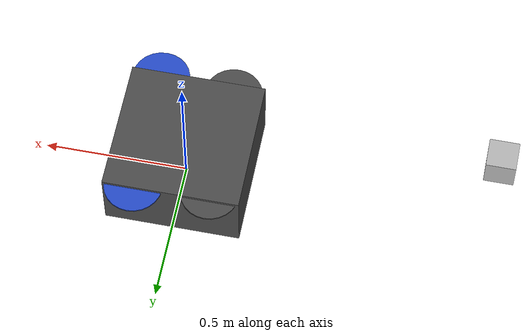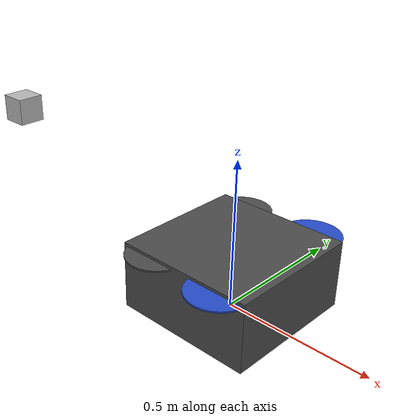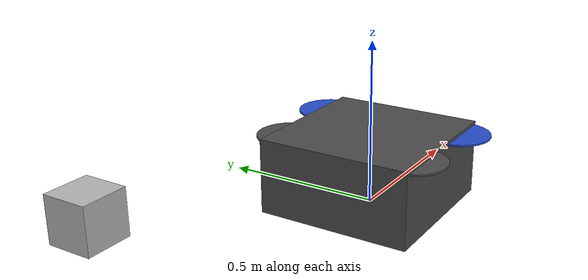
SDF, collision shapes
<?xml version='1.0'?>
<sdf version="1.6">
  <model name="iris_demo">
    <include>
      <uri>model://iris_with_standoffs</uri>
    </include>

    <include>
      <uri>panoramic_camera</uri>
    </include>

    <!-- plugins -->
    <plugin name="rotor_0_blade_1" filename="libLiftDragPlugin.so">
      <a0>0.1</a0>
      <alpha_stall>1.4</alpha_stall>
      <cla>0.2500</cla>
      <cda>0.10</cda>
      <cma>0.00</cma>
      <cla_stall>-0.025</cla_stall>
      <cda_stall>0.0</cda_stall>
      <cma_stall>0.0</cma_stall>
      <area>0.2</area>
      <air_density>1.2041</air_density>
      <cp>0.084 0 0</cp>
      <forward>0 1 0</forward>
      <upward>0 0 1</upward>
      <link_name>iris::rotor_0</link_name>
    </plugin>
    <plugin name="rotor_0_blade_2" filename="libLiftDragPlugin.so">
      <a0>0.1</a0>
      <alpha_stall>1.4</alpha_stall>
      <cla>0.2500</cla>
      <cda>0.10</cda>
      <cma>0.00</cma>
      <cla_stall>-0.025</cla_stall>
      <cda_stall>0.0</cda_stall>
      <cma_stall>0.0</cma_stall>
      <area>0.2</area>
      <air_density>1.2041</air_density>
      <cp>-0.084 0 0</cp>
      <forward>0 -1 0</forward>
      <upward>0 0 1</upward>
      <link_name>iris::rotor_0</link_name>
    </plugin>

    <plugin name="rotor_1_blade_1" filename="libLiftDragPlugin.so">
      <a0>0.1</a0>
      <alpha_stall>1.4</alpha_stall>
      <cla>0.2500</cla>
      <cda>0.10</cda>
      <cma>0.00</cma>
      <cla_stall>-0.025</cla_stall>
      <cda_stall>0.0</cda_stall>
      <cma_stall>0.0</cma_stall>
      <area>0.2</area>
      <air_density>1.2041</air_density>
      <cp>0.084 0 0</cp>
      <forward>0 1 0</forward>
      <upward>0 0 1</upward>
      <link_name>iris::rotor_1</link_name>
    </plugin>
    <plugin name="rotor_1_blade_2" filename="libLiftDragPlugin.so">
      <a0>0.1</a0>
      <alpha_stall>1.4</alpha_stall>
      <cla>0.2500</cla>
      <cda>0.10</cda>
      <cma>0.00</cma>
      <cla_stall>-0.025</cla_stall>
      <cda_stall>0.0</cda_stall>
      <cma_stall>0.0</cma_stall>
      <area>0.2</area>
      <air_density>1.2041</air_density>
      <cp>-0.084 0 0</cp>
      <forward>0 -1 0</forward>
      <upward>0 0 1</upward>
      <link_name>iris::rotor_1</link_name>
    </plugin>

    <plugin name="rotor_2_blade_1" filename="libLiftDragPlugin.so">
      <a0>0.1</a0>
      <alpha_stall>1.4</alpha_stall>
      <cla>0.2500</cla>
      <cda>0.10</cda>
      <cma>0.00</cma>
      <cla_stall>-0.025</cla_stall>
      <cda_stall>0.0</cda_stall>
      <cma_stall>0.0</cma_stall>
      <area>0.2</area>
      <air_density>1.2041</air_density>
      <cp>0.084 0 0</cp>
      <forward>0 -1 0</forward>
      <upward>0 0 1</upward>
      <link_name>iris::rotor_2</link_name>
    </plugin>
    <plugin name="rotor_2_blade_2" filename="libLiftDragPlugin.so">
      <a0>0.1</a0>
      <alpha_stall>1.4</alpha_stall>
      <cla>0.2500</cla>
      <cda>0.10</cda>
      <cma>0.00</cma>
      <cla_stall>-0.025</cla_stall>
      <cda_stall>0.0</cda_stall>
      <cma_stall>0.0</cma_stall>
      <area>0.2</area>
      <air_density>1.2041</air_density>
      <cp>-0.084 0 0</cp>
      <forward>0 1 0</forward>
      <upward>0 0 1</upward>
      <link_name>iris::rotor_2</link_name>
    </plugin>

    <plugin name="rotor_3_blade_1" filename="libLiftDragPlugin.so">
      <a0>0.1</a0>
      <alpha_stall>1.4</alpha_stall>
      <cla>0.2500</cla>
      <cda>0.10</cda>
      <cma>0.00</cma>
      <cla_stall>-0.025</cla_stall>
      <cda_stall>0.0</cda_stall>
      <cma_stall>0.0</cma_stall>
      <area>0.2</area>
      <air_density>1.2041</air_density>
      <cp>0.084 0 0</cp>
      <forward>0 -1 0</forward>
      <upward>0 0 1</upward>
      <link_name>iris::rotor_3</link_name>
    </plugin>
    <plugin name="rotor_3_blade_2" filename="libLiftDragPlugin.so">
      <a0>0.1</a0>
      <alpha_stall>1.4</alpha_stall>
      <cla>0.2500</cla>
      <cda>0.10</cda>
      <cma>0.00</cma>
      <cla_stall>-0.025</cla_stall>
      <cda_stall>0.0</cda_stall>
      <cma_stall>0.0</cma_stall>
      <area>0.2</area>
      <air_density>1.2041</air_density>
      <cp>-0.084 0 0</cp>
      <forward>0 1 0</forward>
      <upward>0 0 1</upward>
      <link_name>iris::rotor_3</link_name>
    </plugin>
    <plugin name="arducopter_plugin" filename="libuav_plugin.so">
      <imuName>iris_demo::iris::iris/imu_link::imu_sensor</imuName>
      <connectionTimeoutMaxCount>5</connectionTimeoutMaxCount>
      <rotor id="0">
        <vel_p_gain>0.01</vel_p_gain>
        <vel_i_gain>0</vel_i_gain>
        <vel_d_gain>0</vel_d_gain>
        <vel_i_max>0</vel_i_max>
        <vel_i_min>0</vel_i_min>
        <vel_cmd_max>2.0</vel_cmd_max>
        <vel_cmd_min>-2.0</vel_cmd_min>
        <jointName>iris::rotor_0_joint</jointName>
        <turningDirection>ccw</turningDirection>
        <rotorVelocitySlowdownSim>1</rotorVelocitySlowdownSim>
      </rotor>
      <rotor id="1">
        <vel_p_gain>0.01</vel_p_gain>
        <vel_i_gain>0</vel_i_gain>
        <vel_d_gain>0</vel_d_gain>
        <vel_i_max>0</vel_i_max>
        <vel_i_min>0</vel_i_min>
        <vel_cmd_max>2.0</vel_cmd_max>
        <vel_cmd_min>-2.0</vel_cmd_min>
        <jointName>iris::rotor_1_joint</jointName>
        <turningDirection>ccw</turningDirection>
        <rotorVelocitySlowdownSim>1</rotorVelocitySlowdownSim>
      </rotor>
      <rotor id="2">
        <vel_p_gain>0.01</vel_p_gain>
        <vel_i_gain>0</vel_i_gain>
        <vel_d_gain>0</vel_d_gain>
        <vel_i_max>0</vel_i_max>
        <vel_i_min>0</vel_i_min>
        <vel_cmd_max>2.0</vel_cmd_max>
        <vel_cmd_min>-2.0</vel_cmd_min>
        <jointName>iris::rotor_2_joint</jointName>
        <turningDirection>cw</turningDirection>
        <rotorVelocitySlowdownSim>1</rotorVelocitySlowdownSim>
      </rotor>
      <rotor id="3">
        <vel_p_gain>0.01</vel_p_gain>
        <vel_i_gain>0</vel_i_gain>
        <vel_d_gain>0</vel_d_gain>
        <vel_cmd_max>2.0</vel_cmd_max>
        <vel_cmd_min>-2.0</vel_cmd_min>
        <jointName>iris::rotor_3_joint</jointName>
        <turningDirection>cw</turningDirection>
        <rotorVelocitySlowdownSim>1</rotorVelocitySlowdownSim>
      </rotor>
      <althold >
        <p_gain>20</p_gain>
        <i_gain>10</i_gain>
        <d_gain>10</d_gain>
        <i_max>1</i_max>
        <i_min>0</i_min>
        <cmd_max>1.0</cmd_max>
        <cmd_min>0.0</cmd_min>
      </althold>
      <loiter >
        <p_gain>0.5</p_gain>
        <i_gain>1</i_gain>
        <d_gain>1</d_gain>
        <p_gain>0</p_gain>
        <i_gain>0</i_gain>
        <d_gain>0</d_gain>
        <i_max>0.1</i_max>
        <i_min>-0.1</i_min>
        <cmd_max>0.01</cmd_max>
        <cmd_min>-0.01</cmd_min>
      </loiter>
    </plugin>

  </model>
</sdf>

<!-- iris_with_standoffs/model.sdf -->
<sdf version='1.6'>
  <model name='iris'>
    <pose>0 0 0.194923 0 0 0</pose>
    <link name='base_link'>
      <velocity_decay>
        <linear>0.0</linear>
        <angular>0.0</angular>
      </velocity_decay>
      <inertial>
        <pose>0 0 0 0 0 0</pose>
        <mass>1.5</mass>
        <inertia>
          <ixx>0.008</ixx>
          <ixy>0</ixy>
          <ixz>0</ixz>
          <iyy>0.015</iyy>
          <iyz>0</iyz>
          <izz>0.017</izz>
        </inertia>
      </inertial>
      <collision name='base_link_collision'>
        <pose>0 0 -0.08 0 0 0</pose>
        <geometry>
          <box>
            <size>0.47 0.47 0.23</size>
          </box>
        </geometry>
        <surface>
          <contact>
            <ode>
              <max_vel>100.0</max_vel>
              <min_depth>0.001</min_depth>
            </ode>
          </contact>
          <friction>
            <ode>
              <mu>1.0</mu>
              <mu2>1.0</mu2>
            </ode>
          </friction>
        </surface>
      </collision>
      <visual name='base_link_visual'>
        <geometry>
          <mesh>
            <uri>model://../model_source/models/iris_with_standoffs/meshes/iris.dae</uri>
          </mesh>
        </geometry>
        <material>
          <script>
            <name>Gazebo/DarkGrey</name>
          </script>
        </material>
      </visual>

      <visual name='front_left_leg_visual'>
        <pose>0.123 0.22 -0.11 0 0 0</pose>
        <geometry>
          <cylinder>
            <radius>0.005</radius>
            <length>0.17</length>
          </cylinder>
        </geometry>
        <material>
          <script>
            <name>Gazebo/FlatBlack</name>
            <uri>file://media/materials/scripts/gazebo.material</uri>
          </script>
        </material>
      </visual>
      <visual name='front_right_leg_visual'>
        <pose>0.123 -0.22 -0.11 0 0 0</pose>
        <geometry>
          <cylinder>
            <radius>0.005</radius>
            <length>0.17</length>
          </cylinder>
        </geometry>
        <material>
          <script>
            <name>Gazebo/FlatBlack</name>
            <uri>file://media/materials/scripts/gazebo.material</uri>
          </script>
        </material>
      </visual>
      <visual name='rear_left_leg_visual'>
        <pose>-0.140 0.21 -0.11 0 0 0</pose>
        <geometry>
          <cylinder>
            <radius>0.005</radius>
            <length>0.17</length>
          </cylinder>
        </geometry>
        <material>
          <script>
            <name>Gazebo/FlatBlack</name>
            <uri>file://media/materials/scripts/gazebo.material</uri>
          </script>
        </material>
      </visual>
      <visual name='rear_right_leg_visual'>
        <pose>-0.140 -0.21 -0.11 0 0 0</pose>
        <geometry>
          <cylinder>
            <radius>0.005</radius>
            <length>0.17</length>
          </cylinder>
        </geometry>
        <material>
          <script>
            <name>Gazebo/FlatBlack</name>
            <uri>file://media/materials/scripts/gazebo.material</uri>
          </script>
        </material>
      </visual>
    </link>
    <link name='iris/ground_truth/odometry_sensorgt_link'>
      <pose>0 0 0 0 -0 0</pose>
      <inertial>
        <pose>0 0 0 0 -0 0</pose>
        <mass>0.15</mass>
        <inertia>
          <ixx>0.0001</ixx>
          <ixy>0</ixy>
          <ixz>0</ixz>
          <iyy>0.0002</iyy>
          <iyz>0</iyz>
          <izz>0.0002</izz>
        </inertia>
      </inertial>
    </link>
    <joint name='iris/ground_truth/odometry_sensorgt_joint' type='revolute'>
      <child>iris/ground_truth/odometry_sensorgt_link</child>
      <parent>base_link</parent>
      <axis>
        <xyz>0 0 1</xyz>
        <limit>
          <lower>0</lower>
          <upper>0</upper>
          <effort>0</effort>
          <velocity>0</velocity>
        </limit>
        <dynamics>
          <damping>1.0</damping>
        </dynamics>
        <use_parent_model_frame>1</use_parent_model_frame>
      </axis>
      <physics>
        <ode>
          <implicit_spring_damper>1</implicit_spring_damper>
        </ode>
      </physics>
    </joint>
    <link name='iris/imu_link'>
      <inertial>
        <pose>0 0 0 0 0 0</pose>
        <mass>0.15</mass>
        <inertia>
          <ixx>0.00001</ixx>
          <ixy>0</ixy>
          <ixz>0</ixz>
          <iyy>0.00002</iyy>
          <iyz>0</iyz>
          <izz>0.00002</izz>
        </inertia>
      </inertial>
      <sensor name="imu_sensor" type="imu">
        <pose>0 0 0 3.141593 0 0</pose>
        <always_on>1</always_on>
        <update_rate>1000.0</update_rate>
      </sensor>
    </link>
    <joint name='iris/imu_joint' type='revolute'>
      <child>iris/imu_link</child>
      <parent>base_link</parent>
      <axis>
        <xyz>0 0 1</xyz>
        <limit>
          <lower>0</lower>
          <upper>0</upper>
          <effort>0</effort>
          <velocity>0</velocity>
        </limit>
        <dynamics>
          <damping>1.0</damping>
        </dynamics>
        <use_parent_model_frame>1</use_parent_model_frame>
      </axis>
      <physics>
        <ode>
          <implicit_spring_damper>1</implicit_spring_damper>
        </ode>
      </physics>
    </joint>
    <link name='rotor_0'>
      <pose>0.13 -0.22 0.023 0 -0 0</pose>
      <inertial>
        <pose>0 0 0 0 -0 0</pose>
        <mass>0.025</mass>
        <inertia>
          <ixx>9.75e-06</ixx>
          <ixy>0</ixy>
          <ixz>0</ixz>
          <iyy>0.000166704</iyy>
          <iyz>0</iyz>
          <izz>0.000167604</izz>
        </inertia>
      </inertial>
      <collision name='rotor_0_collision'>
        <pose>0 0 0 0 -0 0</pose>
        <geometry>
          <cylinder>
            <length>0.005</length>
            <radius>0.1</radius>
          </cylinder>
        </geometry>
        <surface>
          <contact>
            <ode/>
          </contact>
          <friction>
            <ode/>
          </friction>
        </surface>
      </collision>
      <visual name='rotor_0_visual'>
        <pose>0 0 0 0 -0 0</pose>
        <geometry>
          <mesh>
            <scale>1 1 1</scale>
            <uri>model://../model_source/models/iris_with_standoffs/meshes/iris_prop_ccw.dae</uri>
          </mesh>
        </geometry>
        <material>
          <script>
            <name>Gazebo/Blue</name>
            <uri>__default__</uri>
          </script>
        </material>
      </visual>
      <gravity>1</gravity>
      <velocity_decay/>
      <self_collide>0</self_collide>
    </link>
    <joint name='rotor_0_joint' type='revolute'>
      <child>rotor_0</child>
      <parent>base_link</parent>
      <axis>
        <xyz>0 0 1</xyz>
        <limit>
          <lower>-1e+16</lower>
          <upper>1e+16</upper>
        </limit>
        <dynamics>
          <damping>0.004</damping>
        </dynamics>
        <use_parent_model_frame>1</use_parent_model_frame>
      </axis>
      <physics>
        <ode>
          <implicit_spring_damper>1</implicit_spring_damper>
        </ode>
      </physics>
    </joint>
    <link name='rotor_1'>
      <pose>-0.13 0.2 0.023 0 -0 0</pose>
      <inertial>
        <pose>0 0 0 0 -0 0</pose>
        <mass>0.025</mass>
        <inertia>
          <ixx>9.75e-06</ixx>
          <ixy>0</ixy>
          <ixz>0</ixz>
          <iyy>0.000166704</iyy>
          <iyz>0</iyz>
          <izz>0.000167604</izz>
        </inertia>
      </inertial>
      <collision name='rotor_1_collision'>
        <pose>0 0 0 0 -0 0</pose>
        <geometry>
          <cylinder>
            <length>0.005</length>
            <radius>0.1</radius>
          </cylinder>
        </geometry>
        <surface>
          <contact>
            <ode/>
          </contact>
          <friction>
            <ode/>
          </friction>
        </surface>
      </collision>
      <visual name='rotor_1_visual'>
        <pose>0 0 0 0 -0 0</pose>
        <geometry>
          <mesh>
            <scale>1 1 1</scale>
            <uri>model://../model_source/models/iris_with_standoffs/meshes/iris_prop_ccw.dae</uri>
          </mesh>
        </geometry>
        <material>
          <script>
            <name>Gazebo/DarkGrey</name>
            <uri>__default__</uri>
          </script>
        </material>
      </visual>
      <gravity>1</gravity>
      <velocity_decay/>
      <self_collide>0</self_collide>
    </link>
    <joint name='rotor_1_joint' type='revolute'>
      <child>rotor_1</child>
      <parent>base_link</parent>
      <axis>
        <xyz>0 0 1</xyz>
        <limit>
          <lower>-1e+16</lower>
          <upper>1e+16</upper>
        </limit>
        <dynamics>
          <damping>0.004</damping>
        </dynamics>
        <use_parent_model_frame>1</use_parent_model_frame>
      </axis>
      <physics>
        <ode>
          <implicit_spring_damper>1</implicit_spring_damper>
        </ode>
      </physics>
    </joint>
    <link name='rotor_2'>
      <pose>0.13 0.22 0.023 0 -0 0</pose>
      <inertial>
        <pose>0 0 0 0 -0 0</pose>
        <mass>0.025</mass>
        <inertia>
          <ixx>9.75e-06</ixx>
          <ixy>0</ixy>
          <ixz>0</ixz>
          <iyy>0.000166704</iyy>
          <iyz>0</iyz>
          <izz>0.000167604</izz>
        </inertia>
      </inertial>
      <collision name='rotor_2_collision'>
        <pose>0 0 0 0 -0 0</pose>
        <geometry>
          <cylinder>
            <length>0.005</length>
            <radius>0.1</radius>
          </cylinder>
        </geometry>
        <surface>
          <contact>
            <ode/>
          </contact>
          <friction>
            <ode/>
          </friction>
        </surface>
      </collision>
      <visual name='rotor_2_visual'>
        <pose>0 0 0 0 -0 0</pose>
        <geometry>
          <mesh>
            <scale>1 1 1</scale>
            <uri>model://../model_source/models/iris_with_standoffs/meshes/iris_prop_cw.dae</uri>
          </mesh>
        </geometry>
        <material>
          <script>
            <name>Gazebo/Blue</name>
            <uri>__default__</uri>
          </script>
        </material>
      </visual>
      <gravity>1</gravity>
      <velocity_decay/>
      <self_collide>0</self_collide>
    </link>
    <joint name='rotor_2_joint' type='revolute'>
      <child>rotor_2</child>
      <parent>base_link</parent>
      <axis>
        <xyz>0 0 1</xyz>
        <limit>
          <lower>-1e+16</lower>
          <upper>1e+16</upper>
        </limit>
        <dynamics>
          <damping>0.004</damping>
        </dynamics>
        <use_parent_model_frame>1</use_parent_model_frame>
      </axis>
      <physics>
        <ode>
          <implicit_spring_damper>1</implicit_spring_damper>
        </ode>
      </physics>
    </joint>
    <link name='rotor_3'>
      <pose>-0.13 -0.2 0.023 0 -0 0</pose>
      <inertial>
        <pose>0 0 0 0 -0 0</pose>
        <mass>0.025</mass>
        <inertia>
          <ixx>9.75e-06</ixx>
          <ixy>0</ixy>
          <ixz>0</ixz>
          <iyy>0.000166704</iyy>
          <iyz>0</iyz>
          <izz>0.000167604</izz>
        </inertia>
      </inertial>
      <collision name='rotor_3_collision'>
        <pose>0 0 0 0 -0 0</pose>
        <geometry>
          <cylinder>
            <length>0.005</length>
            <radius>0.1</radius>
          </cylinder>
        </geometry>
        <surface>
          <contact>
            <ode/>
          </contact>
          <friction>
            <ode/>
          </friction>
        </surface>
      </collision>
      <visual name='rotor_3_visual'>
        <pose>0 0 0 0 -0 0</pose>
        <geometry>
          <mesh>
            <scale>1 1 1</scale>
            <uri>model://../model_source/models/iris_with_standoffs/meshes/iris_prop_cw.dae</uri>
          </mesh>
        </geometry>
        <material>
          <script>
            <name>Gazebo/DarkGrey</name>
            <uri>__default__</uri>
          </script>
        </material>
      </visual>
      <gravity>1</gravity>
      <velocity_decay/>
      <self_collide>0</self_collide>
    </link>
    <joint name='rotor_3_joint' type='revolute'>
      <child>rotor_3</child>
      <parent>base_link</parent>
      <axis>
        <xyz>0 0 1</xyz>
        <limit>
          <lower>-1e+16</lower>
          <upper>1e+16</upper>
        </limit>
        <dynamics>
          <damping>0.004</damping>
        </dynamics>
        <use_parent_model_frame>1</use_parent_model_frame>
      </axis>
      <physics>
        <ode>
          <implicit_spring_damper>1</implicit_spring_damper>
        </ode>
      </physics>
    </joint>
    <static>0</static>
  </model>
</sdf>

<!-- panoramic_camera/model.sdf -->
<sdf version='1.6'>
  <model name="panoramic_camera">
     <pose frame=''>-1.07303 0 0.4 0 -1.5707 0</pose>
    <link name="link">
      <inertial>
        <mass>0.1</mass>
        <pose frame=''>0 0 0 0 -0 0</pose>
        <inertia>
          <ixx>0.0001</ixx>
          <ixy>0</ixy>
          <ixz>0</ixz>
          <iyy>0.0001</iyy>
          <iyz>0</iyz>
          <izz>0.0001</izz>
        </inertia>
      </inertial>
      <collision name="collision">
        <geometry>
          <box>
            <size>0.1 0.1 0.1</size>
          </box>
        </geometry>
      </collision>
      <visual name="visual">
        <geometry>
          <box>
            <size>0.1 0.1 0.1</size>
          </box>
        </geometry>
      </visual>
      <sensor name="camera" type="wideanglecamera">
        <camera>
          <horizontal_fov>6.2831</horizontal_fov>
          <image>
            <width>640</width>
            <height>640</height>
            <format>B8G8R8</format>
          </image>
          <clip>
            <near>0.1</near>
            <far>100</far>
          </clip>
          <lens>
            <type>custom</type>
            <scale_to_hfov>true</scale_to_hfov>
            <cutoff_angle>6.2831</cutoff_angle>
            <env_texture_size>512</env_texture_size>
            <custom_function>
            <c1>1.05</c1>
            <c2>4</c2>
            <f>2</f>
            <fun>tan</fun>
          </custom_function>
          </lens>
        </camera>
        <always_on>1</always_on>
        <update_rate>30</update_rate>
      </sensor>
    </link>
    <joint name='link_0_JOINT_0_0' type='fixed'>
      <parent>differential_drive_robot::link_0</parent>
      <child>panoramic_camera::link</child>
      <pose frame=''>0 0 0 0 -0 0</pose>
      <physics>
        <ode>
          <limit>
            <cfm>0</cfm>
            <erp>0.2</erp>
          </limit>
          <suspension>
            <cfm>0</cfm>
            <erp>0.2</erp>
          </suspension>
        </ode>
      </physics>
    </joint>
  </model>

</sdf>
